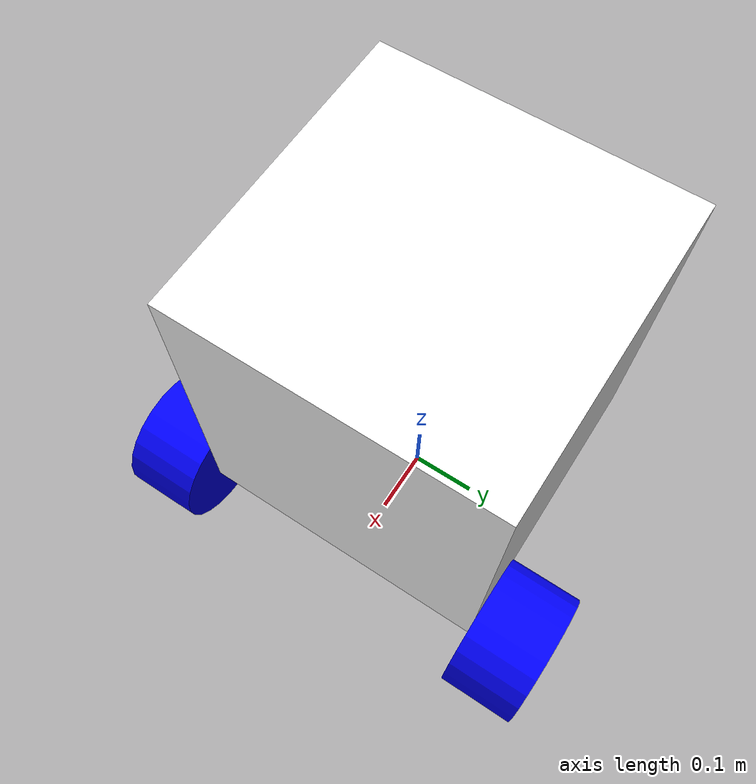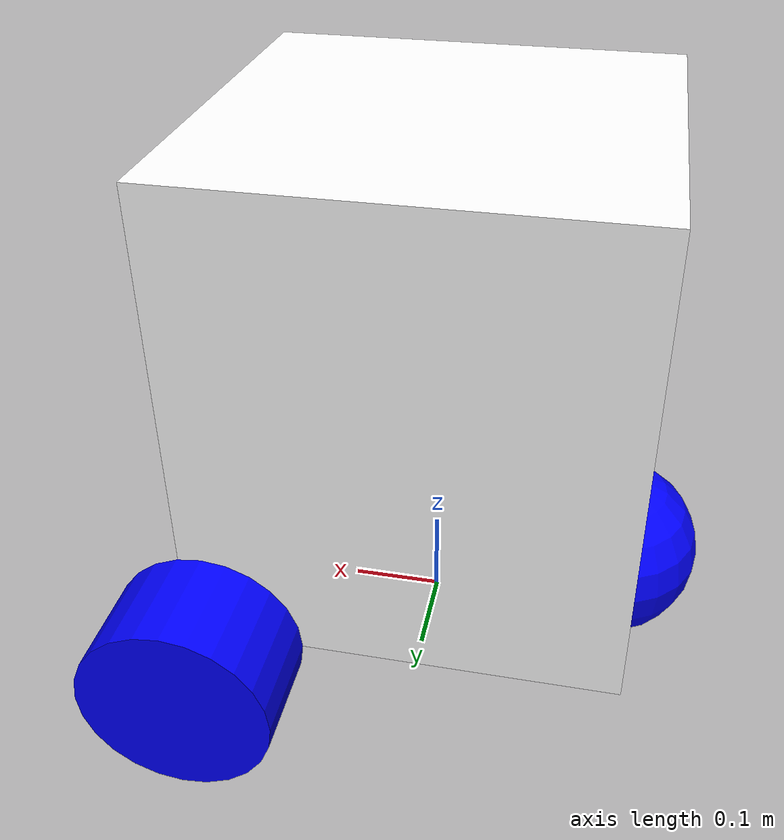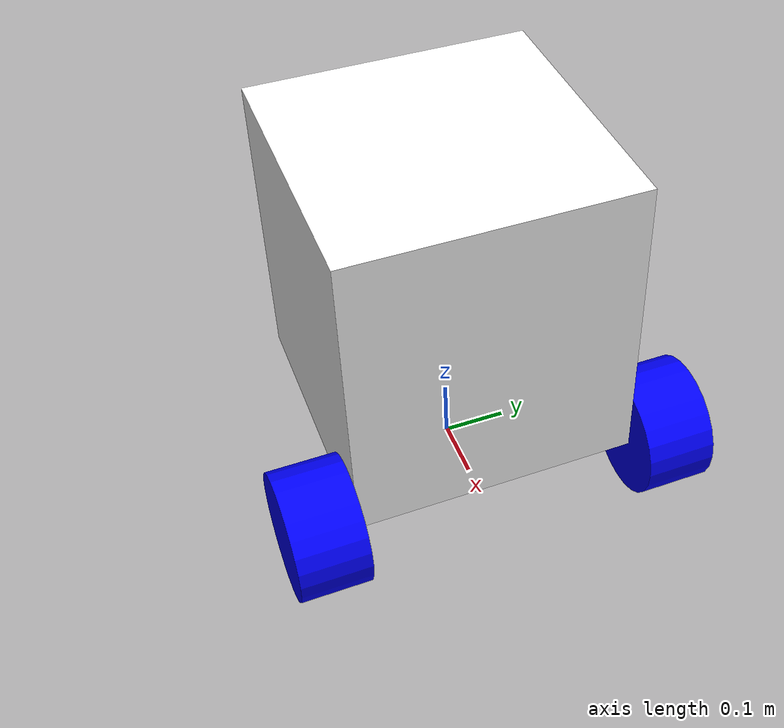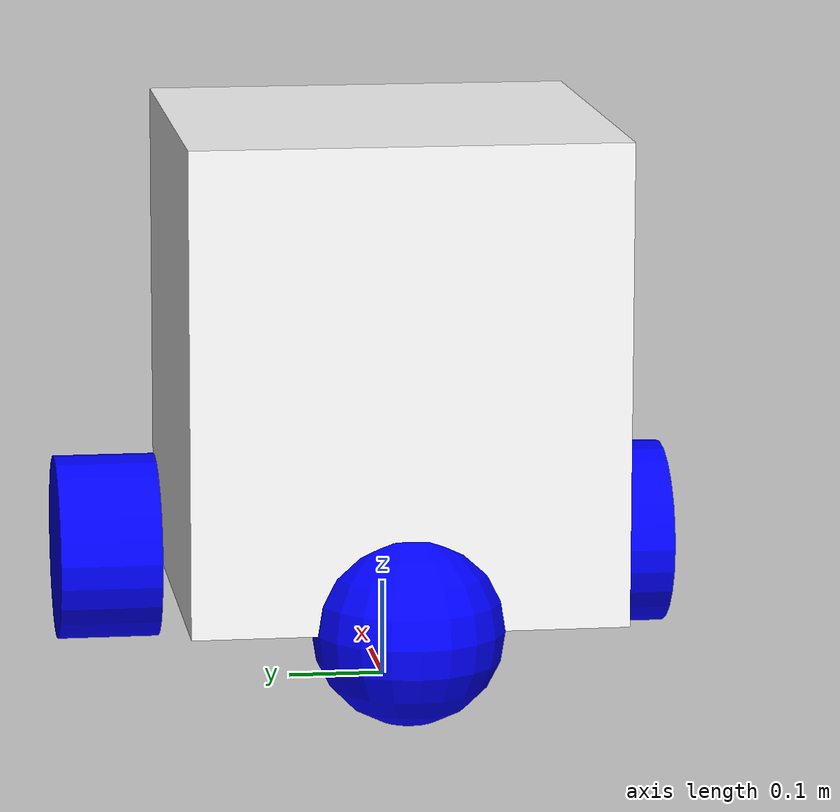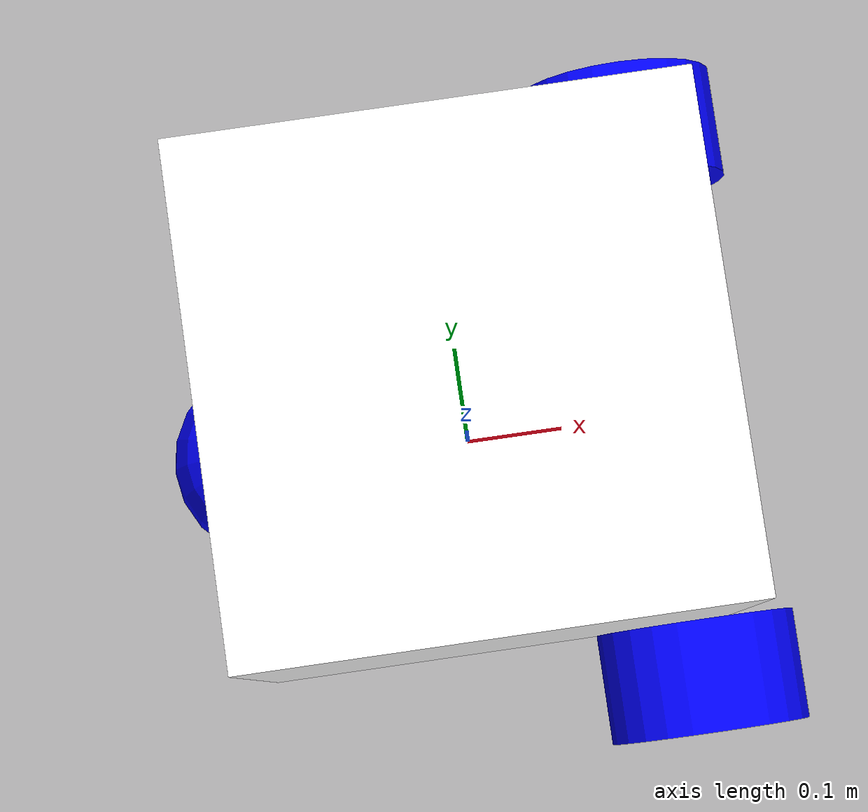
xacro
<?xml version="1.0"?>
      <!-- rplidar_myahrs.urdf 원문을 여기 -->
<robot xmlns:xacro="http://ros.org/wiki/xacro" name="wheelchair_bot" >
    <xacro:include filename="macros.xacro"/>

    <material name="white">
        <color rgba="1 1 1 1" />
    </material>

    <material name="blue">
        <color rgba="0 0 1 1"/>
    </material>
    <link name="base_footprint"/>

    <link name="base_link">
        <visual>
            <origin xyz="0 0 0.25"/>
            <geometry>
                <box size="0.45 0.45 0.5"/>
            </geometry>
            <material name="white"/>
        </visual>
        <collision>
            <origin xyz="0 0 0.25"/>
            <geometry>
                <box size="0.45 0.45 0.5"/>
            </geometry>
        </collision>
        <xacro:inertial_box mass="1" x="0.45" y="0.45" z="0.5">
            <origin xyz="0 0 0.25" rpy="0 0 0"/>
        </xacro:inertial_box>
    </link>

    <joint name="base_joint" type="fixed">
      <parent link="base_footprint"/>
      <child link="base_link"/>
      <origin xyz="0.0 0.0 0.1" rpy= "0 0 0"/>
    </joint>

    <link name="wheel_left">
        <visual>
            <origin xyz="0 0 0"/>
            <geometry>
                <cylinder radius="0.1" length="0.11"/>
            </geometry>
            <material name="blue"/>
        </visual>
        <collision>
            <origin xyz="0 0 0"/>
            <geometry>
                <cylinder radius="0.1" length="0.11"/>
            </geometry>
        </collision>
        <xacro:inertial_cylinder mass="0.5" length="0.11" radius="0.1">
            <origin xyz="0 0 0" rpy="0 0 0"/>
        </xacro:inertial_cylinder>
    </link>

    <joint name="left_wheel_joint" type="continuous">
        <parent link="base_link"/>
        <child link="wheel_left"/>
        <origin xyz="0.2 0.28 0" rpy="1.57 0 0" />
        <axis xyz="0 0 1"/>
    </joint>

    <link name="wheel_right">
        <visual>
            <origin xyz="0 0 0"/>
            <geometry>
                <cylinder radius="0.1" length="0.11"/>
            </geometry>
            <material name="blue"/>
        </visual>
        <collision>
            <origin xyz="0 0 0"/>
            <geometry>
                <cylinder radius="0.1" length="0.11"/>
            </geometry>
        </collision>
        <xacro:inertial_cylinder mass="0.5" length="0.11" radius="0.1">
            <origin xyz="0 0 0" rpy="0 0 0"/>
        </xacro:inertial_cylinder>
    </link>

    <joint name="right_wheel_joint" type="continuous">
        <parent link="base_link"/>
        <child link="wheel_right"/>
        <origin xyz="0.2 -0.28 0" rpy="1.57 0 0" />
        <axis xyz="0 0 1"/>
    </joint>

    <link name="caster_wheel">
        <visual>
            <geometry>
                <sphere radius="0.1"/>
            </geometry>
            <material name="blue"/>
        </visual>
        <collision>
            <origin xyz="0 0 0"/>
            <geometry>
                <sphere radius="0.1"/>
            </geometry>
        </collision>
        <xacro:inertial_sphere mass="0.1" radius="0.1">
            <origin xyz="0 0 0" rpy="0 0 0"/>
        </xacro:inertial_sphere>
    </link>
    <joint name="caster_wheel_joint" type="fixed">
        <parent link="base_link"/>
        <child link="caster_wheel"/>
        <origin xyz="-0.2 0 0"/>
    </joint>

    <link name="laser_frame"/>
    <link name="imu_link"/>
    <link name="depth_camera_link"/>

    <joint name="base_to_laser" type="fixed">
        <parent link="base_footprint"/>
        <child link="laser_frame"/>
        <origin xyz="0.0 0.23 1.2" rpy="0 0 0"/>
    </joint>

    <joint name="base_to_imu" type="fixed">
        <parent link="base_footprint"/>
        <child link="imu_link"/>
        <origin xyz="0.0 0.0 0.05" rpy="0 0 0"/>
    </joint>

    <joint name="base_to_camera" type="fixed">
        <parent link="base_footprint"/>
        <child link="depth_camera_link"/>
        <origin xyz="0.0 0.23 1.0" rpy="0 0 0"/>
    </joint>

    <link name="camera_link"></link>

    <link name="camera_depth_frame"></link>

    <link name="camera_depth_optical_frame"></link>

    <link name="camera_color_frame"></link>

    <link name="camera_color_optical_frame"></link>

    <link name="camera_left_ir_frame"></link>

    <link name="camera_left_ir_optical_frame"></link>

    <link name="camera_right_ir_frame"></link>

    <link name="camera_right_ir_optical_frame"></link>

    <joint name="camera_link_joint" type="fixed">
        <parent link="depth_camera_link" />
        <child link="camera_link" />
        <origin xyz="0 0.0175 0.0125 " rpy="0 0 0" />
    </joint>

    <joint name="camera_depth_joint" type="fixed">
        <parent link="camera_link" />
        <child link="camera_depth_frame" />
        <origin xyz="0 0 0" rpy="0 0 0" />
    </joint>

    <joint name="camera_depth_optical_joint" type="fixed">
        <parent link="camera_depth_frame" />
        <child link="camera_depth_optical_frame" />
        <origin xyz="0 0 0 " rpy="-1.57 0 -1.57" />
    </joint>

    <joint name="camera_color_joint" type="fixed">
        <parent link="camera_depth_frame" />
        <child link="camera_color_frame" />
        <origin xyz="0 0 0" rpy="0 0 0" />
    </joint>

    <joint name="camera_color_optical_joint" type="fixed">
        <parent link="camera_color_frame" />
        <child link="camera_color_optical_frame" />
        <origin xyz="0 0 0 " rpy="-1.57 0 -1.57" />
    </joint>

    <joint name="camera_left_ir_joint" type="fixed">
        <parent link="camera_depth_frame" />
        <child link="camera_left_ir_frame" />
        <origin xyz="0 0 0 " rpy="0 0 0 " />
    </joint>

    <joint name="camera_left_ir_optical_joint" type="fixed">
        <parent link="camera_left_ir_frame" />
        <child link="camera_left_ir_optical_frame" />
        <origin xyz="0 0 0 " rpy="-1.57 0 -1.57" />
    </joint>

    <joint name="camera_right_ir_joint" type="fixed">
        <parent link="camera_depth_frame" />
        <child link="camera_right_ir_frame" />
        <origin xyz="0 -0.050 0 " rpy="0 0 0" />
    </joint>

    <joint name="camera_right_ir_optical_joint" type="fixed">
        <parent link="camera_right_ir_frame" />
        <child link="camera_right_ir_optical_frame" />
        <origin xyz="0 0 0 " rpy="-1.57 0 -1.57" />
    </joint>

</robot>

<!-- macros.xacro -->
<robot xmlns:xacro="http://www.ros.org/wiki/xacro" >

    <!-- Specify some standard inertial calculations https://en.wikipedia.org/wiki/List_of_moments_of_inertia -->
    <!-- These make use of xacro's mathematical functionality -->

    <xacro:macro name="inertial_sphere" params="mass radius *origin">
        <inertial>
            <xacro:insert_block name="origin"/>
            <mass value="${mass}" />
            <inertia ixx="${(2/5) * mass * (radius*radius)}" ixy="0.0" ixz="0.0"
                    iyy="${(2/5) * mass * (radius*radius)}" iyz="0.0"
                    izz="${(2/5) * mass * (radius*radius)}" />
        </inertial>
    </xacro:macro>

     <xacro:macro name="inertial_box" params="mass x y z *origin">
        <inertial>
            <xacro:insert_block name="origin"/>
            <mass value="${mass}" />
            <inertia ixx="${(1/12) * mass * (y*y+z*z)}" ixy="0.0" ixz="0.0"
                    iyy="${(1/12) * mass * (x*x+z*z)}" iyz="0.0"
                    izz="${(1/12) * mass * (x*x+y*y)}" />
        </inertial>
    </xacro:macro>

    <xacro:macro name="inertial_cylinder" params="mass length radius *origin">
        <inertial>
            <xacro:insert_block name="origin"/>
            <mass value="${mass}" />
            <inertia ixx="${(1/12) * mass * (3*radius*radius + length*length)}" ixy="0.0" ixz="0.0"
                    iyy="${(1/12) * mass * (3*radius*radius + length*length)}" iyz="0.0"
                    izz="${(1/2) * mass * (radius*radius)}" />
        </inertial>
    </xacro:macro>

</robot>
